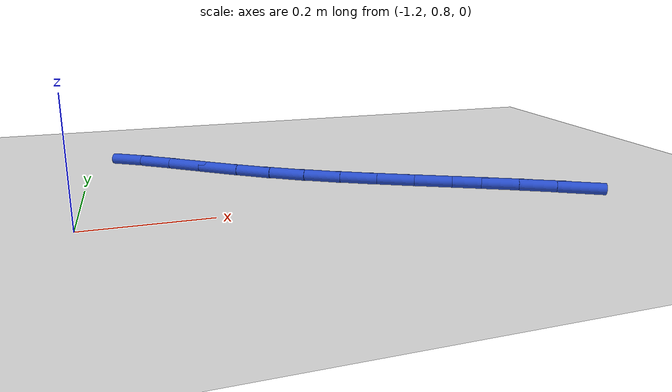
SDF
<sdf version="1.6">
 <world name="default">
  <model name="ground_plane">
   <static>1</static>
   <link name="link">
    <collision name="collision">
     <geometry><plane><normal>0 0 1</normal><size>100 100</size></plane></geometry>
     <surface><friction><ode><mu>100</mu><mu2>50</mu2></ode></friction></surface>
    </collision>
    <visual name="visual">
     <cast_shadows>0</cast_shadows>
     <geometry><plane><normal>0 0 1</normal><size>100 100</size></plane></geometry>
     <material>
      <script><uri>file://media/materials/scripts/gazebo.material</uri><name>Gazebo/WhiteGlow</name></script>
     </material>
    </visual>
   </link>
  </model>
  <model name="line">
   <link name="link_14">
    <pose>-0.39411147269141195 0.7325198477788846 0.01 0 1.57 -0.5025360604168655</pose>
    <collision name="collision">
     <geometry><cylinder><radius>0.01</radius><length>0.08</length></cylinder></geometry>
    </collision>
    <visual name="visual">
     <material>
      <script><name>Gazebo/Blue</name><uri>file://media/materials/scripts/gazebo.material</uri></script>
     </material>
     <geometry><cylinder><radius>0.01</radius><length>0.08</length></cylinder></geometry>
    </visual>
   </link>
   <link name="link_15">
    <pose>-0.4491975216366112 0.7627951405005725 0.01 0 1.57 -0.4725905075446632</pose>
    <collision name="collision">
     <geometry><cylinder><radius>0.01</radius><length>0.08</length></cylinder></geometry>
    </collision>
    <visual name="visual">
     <material>
      <script><name>Gazebo/Blue</name><uri>file://media/materials/scripts/gazebo.material</uri></script>
     </material>
     <geometry><cylinder><radius>0.01</radius><length>0.08</length></cylinder></geometry>
    </visual>
   </link>
   <link name="link_16">
    <pose>-0.5059824829229073 0.7918252670282062 0.01 0 1.57 -0.4544088078183487</pose>
    <collision name="collision">
     <geometry><cylinder><radius>0.01</radius><length>0.08</length></cylinder></geometry>
    </collision>
    <visual name="visual">
     <material>
      <script><name>Gazebo/Blue</name><uri>file://media/materials/scripts/gazebo.material</uri></script>
     </material>
     <geometry><cylinder><radius>0.01</radius><length>0.08</length></cylinder></geometry>
    </visual>
   </link>
   <link name="link_17">
    <pose>-0.5639951777211485 0.820164716430138 0.01 0 1.57 -0.4474372940667769</pose>
    <collision name="collision">
     <geometry><cylinder><radius>0.01</radius><length>0.08</length></cylinder></geometry>
    </collision>
    <visual name="visual">
     <material>
      <script><name>Gazebo/Blue</name><uri>file://media/materials/scripts/gazebo.material</uri></script>
     </material>
     <geometry><cylinder><radius>0.01</radius><length>0.08</length></cylinder></geometry>
    </visual>
   </link>
   <link name="link_18">
    <pose>-0.6227644272021832 0.8483679777747201 0.01 0 1.57 -0.4513024951158083</pose>
    <collision name="collision">
     <geometry><cylinder><radius>0.01</radius><length>0.08</length></cylinder></geometry>
    </collision>
    <visual name="visual">
     <material>
      <script><name>Gazebo/Blue</name><uri>file://media/materials/scripts/gazebo.material</uri></script>
     </material>
     <geometry><cylinder><radius>0.01</radius><length>0.08</length></cylinder></geometry>
    </visual>
   </link>
   <link name="link_19">
    <pose>-0.6818190525368593 0.8769895401303046 0.01 0 1.57 -0.4658187735424909</pose>
    <collision name="collision">
     <geometry><cylinder><radius>0.01</radius><length>0.08</length></cylinder></geometry>
    </collision>
    <visual name="visual">
     <material>
      <script><name>Gazebo/Blue</name><uri>file://media/materials/scripts/gazebo.material</uri></script>
     </material>
     <geometry><cylinder><radius>0.01</radius><length>0.08</length></cylinder></geometry>
    </visual>
   </link>
   <link name="link_20">
    <pose>-0.7406878748960248 0.9065838925652435 0.01 0 1.57 -0.49096409741311337</pose>
    <collision name="collision">
     <geometry><cylinder><radius>0.01</radius><length>0.08</length></cylinder></geometry>
    </collision>
    <visual name="visual">
     <material>
      <script><name>Gazebo/Blue</name><uri>file://media/materials/scripts/gazebo.material</uri></script>
     </material>
     <geometry><cylinder><radius>0.01</radius><length>0.08</length></cylinder></geometry>
    </visual>
   </link>
   <link name="link_21">
    <pose>-0.7988997154505286 0.9377055241478894 0.01 0 1.57 -0.5268264362457915</pose>
    <collision name="collision">
     <geometry><cylinder><radius>0.01</radius><length>0.08</length></cylinder></geometry>
    </collision>
    <visual name="visual">
     <material>
      <script><name>Gazebo/Blue</name><uri>file://media/materials/scripts/gazebo.material</uri></script>
     </material>
     <geometry><cylinder><radius>0.01</radius><length>0.08</length></cylinder></geometry>
    </visual>
   </link>
   <link name="link_22">
    <pose>-0.8559833953712184 0.9709089239465946 0.01 0 1.57 -0.5734719766557198</pose>
    <collision name="collision">
     <geometry><cylinder><radius>0.01</radius><length>0.08</length></cylinder></geometry>
    </collision>
    <visual name="visual">
     <material>
      <script><name>Gazebo/Blue</name><uri>file://media/materials/scripts/gazebo.material</uri></script>
     </material>
     <geometry><cylinder><radius>0.01</radius><length>0.08</length></cylinder></geometry>
    </visual>
   </link>
   <link name="link_23">
    <pose>-0.9114691234954582 1.0067459296608834 0.01 0 1.57 -0.620660253702566</pose>
    <collision name="collision">
     <geometry><cylinder><radius>0.01</radius><length>0.08</length></cylinder></geometry>
    </collision>
    <visual name="visual">
     <material>
      <script><name>Gazebo/Blue</name><uri>file://media/materials/scripts/gazebo.material</uri></script>
     </material>
     <geometry><cylinder><radius>0.01</radius><length>0.08</length></cylinder></geometry>
    </visual>
   </link>
   <link name="link_24">
    <pose>-0.9652046006179078 1.045161757536786 0.01 0 1.57 -0.6453136732114836</pose>
    <collision name="collision">
     <geometry><cylinder><radius>0.01</radius><length>0.08</length></cylinder></geometry>
    </collision>
    <visual name="visual">
     <material>
      <script><name>Gazebo/Blue</name><uri>file://media/materials/scripts/gazebo.material</uri></script>
     </material>
     <geometry><cylinder><radius>0.01</radius><length>0.08</length></cylinder></geometry>
    </visual>
   </link>
   <link name="link_25">
    <pose>-1.0177576969177955 1.0847256198341244 0.01 0 1.57 -0.6442750707742223</pose>
    <collision name="collision">
     <geometry><cylinder><radius>0.01</radius><length>0.08</length></cylinder></geometry>
    </collision>
    <visual name="visual">
     <material>
      <script><name>Gazebo/Blue</name><uri>file://media/materials/scripts/gazebo.material</uri></script>
     </material>
     <geometry><cylinder><radius>0.01</radius><length>0.08</length></cylinder></geometry>
    </visual>
   </link>
   <link name="link_26">
    <pose>-1.0697955820853824 1.123817000498888 0.01 0 1.57 -0.6166869649738201</pose>
    <collision name="collision">
     <geometry><cylinder><radius>0.01</radius><length>0.08</length></cylinder></geometry>
    </collision>
    <visual name="visual">
     <material>
      <script><name>Gazebo/Blue</name><uri>file://media/materials/scripts/gazebo.material</uri></script>
     </material>
     <geometry><cylinder><radius>0.01</radius><length>0.08</length></cylinder></geometry>
    </visual>
   </link>
   <link name="link_27">
    <pose>-1.1219854258109287 1.160815383477065 0.01 0 1.57 -0.5606892397124411</pose>
    <collision name="collision">
     <geometry><cylinder><radius>0.01</radius><length>0.08</length></cylinder></geometry>
    </collision>
    <visual name="visual">
     <material>
      <script><name>Gazebo/Blue</name><uri>file://media/materials/scripts/gazebo.material</uri></script>
     </material>
     <geometry><cylinder><radius>0.01</radius><length>0.08</length></cylinder></geometry>
    </visual>
   </link>
  </model>
 </world>
</sdf>
